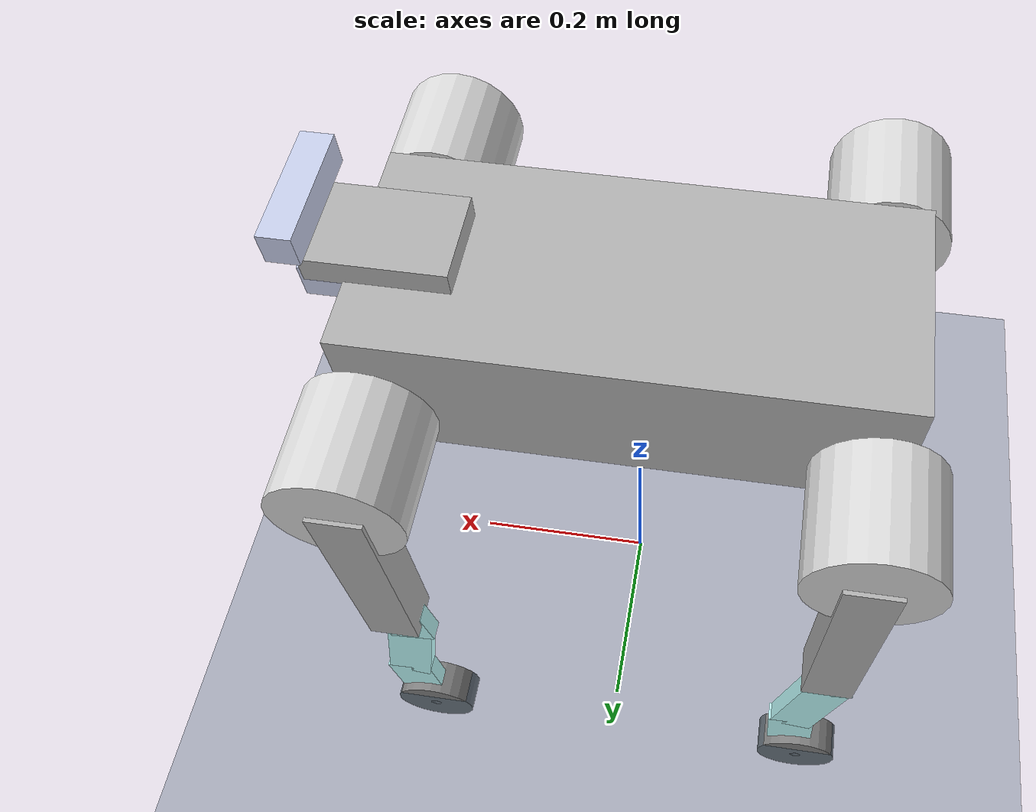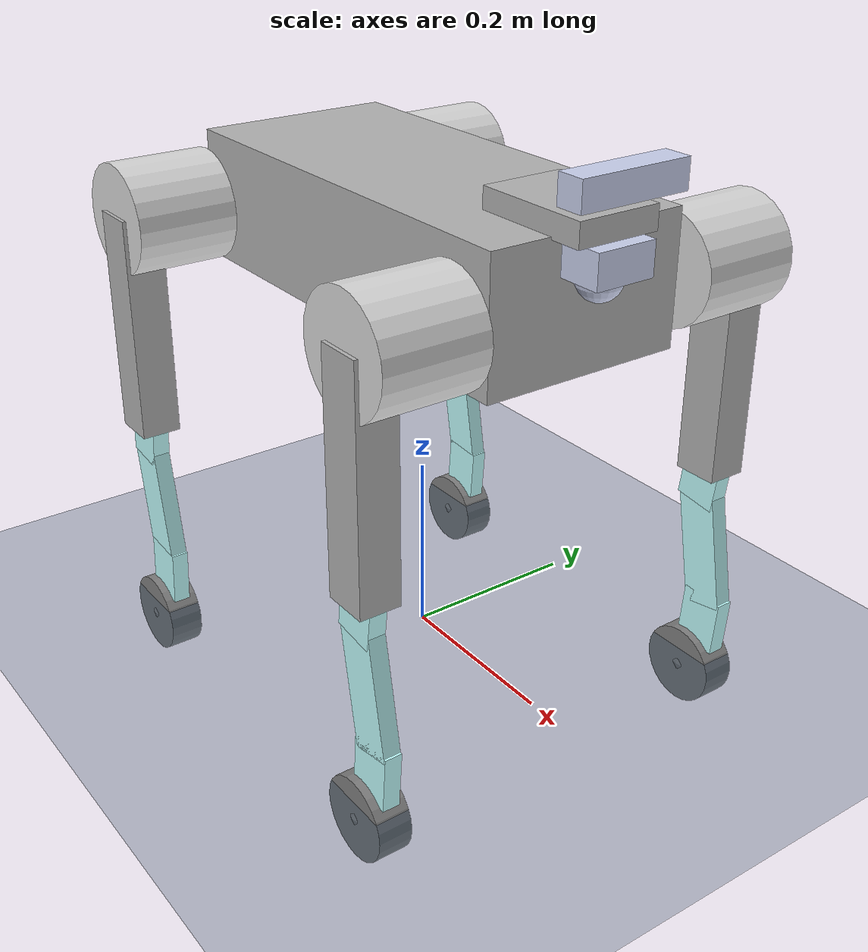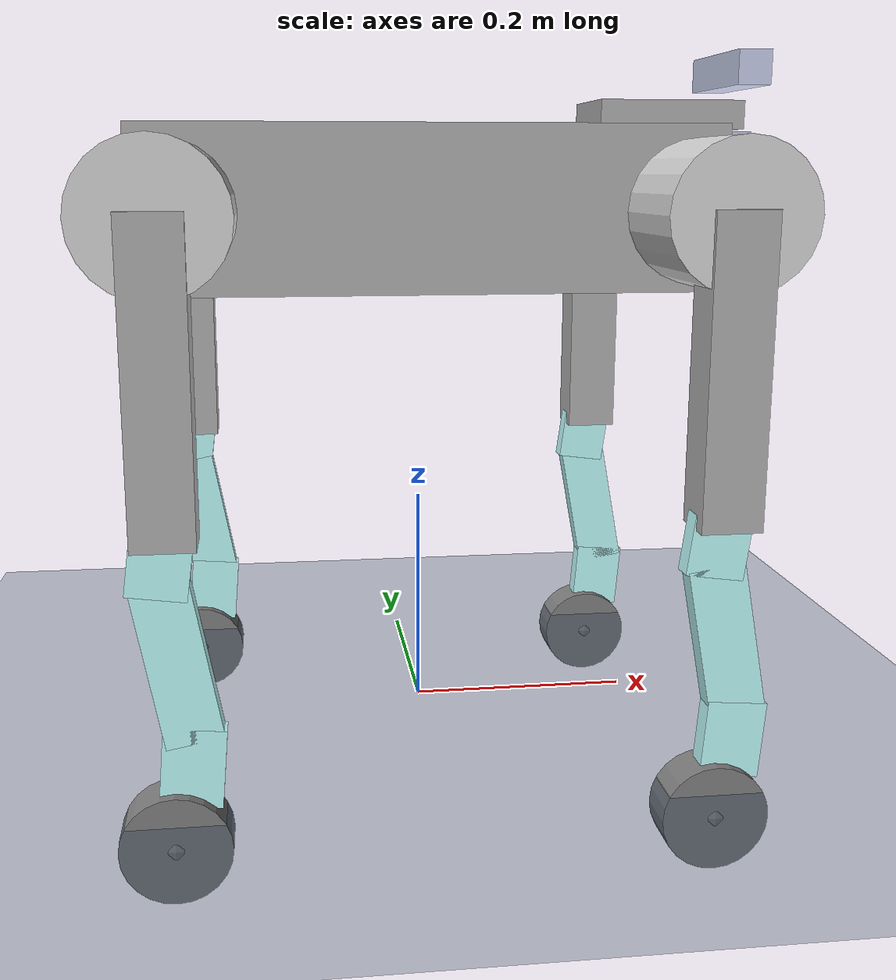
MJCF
<?xml version='1.0' encoding='utf-8'?>
<mujoco model="eva02_quadruped">
  <compiler angle="radian" meshdir="meshes" autolimits="true" />

  <asset>

    <texture name="tex_plane" type="2d" builtin="checker" rgb1="0.2 0.3 0.4" rgb2="0.1 0.2 0.3" width="300" height="300" mark="edge" markrgb="0.8 0.8 0.8" />
    <material name="mat_plane" texture="tex_plane" texrepeat="5 5" texuniform="true" reflectance="0.2" />

    <material name="mat_base" rgba="0.698 0.698 0.698 1.0" />
    <material name="mat_hip" rgba="0.85 0.85 0.85 1.0" />
    <material name="mat_thigh" rgba="0.698 0.698 0.698 1.0" />
    <material name="mat_calf" rgba="0.753 1.0 1.0 1.0" />
    <material name="mat_foot" rgba="0.502 0.502 0.502 1.0" />
  </asset>

  <default>
    <geom type="box" condim="3" friction="1.0 0.005 0.0001" />
    <joint type="hinge" limited="true" armature="0.01" damping="0.1" frictionloss="0.01" />
    <motor ctrlrange="-100 100" />
  </default>

  <worldbody>

    <light name="light" pos="0 0 10" dir="0 0 -1" diffuse="0.8 0.8 0.8" specular="0.2 0.2 0.2" />
    <geom name="floor" type="plane" pos="0 0 0" size="10 10 0.1" material="mat_plane" condim="3" />

    <body name="base" pos="0 0 0.4">
      <inertial pos="0.011858 0.000475 0.060237" mass="2.03" diaginertia="0.035961 0.031045 0.013523" />
      <freejoint name="base_joint" />

      <geom name="base_main" type="box" pos="0 0 0.07" size="0.25 0.11 0.07" material="mat_base" />
      <geom name="base_front" type="box" pos="0.22 0 0.15" size="0.065 0.045 0.0125" material="mat_base" />

      <site name="imu_site" pos="0 0 0" size="0.01" />

      <geom name="camera" type="box" pos="0.28698 0 0.1895" size="0.015 0.06 0.015" rgba="0.792 0.82 0.933 1" />

      <geom name="lidar_box" type="box" pos="0.264 0 0.1185" size="0.0325 0.0325 0.0175" rgba="0.792 0.82 0.929 1" />
      <geom name="lidar_sphere" type="sphere" pos="0.264 0 0.0985" size="0.0225" rgba="0.792 0.82 0.929 1" />

      <body name="FL_hip" pos="0.2181 0.09179 0.06815">
        <inertial pos="-0.013264 -0.000827 0.000642" mass="0.606" diaginertia="0.000779 0.000677 0.000428" />
        <joint name="FL_hip_joint" axis="1 0 0" range="-1.0472 1.0472" />
        <geom name="FL_hip_geom" type="cylinder" pos="0 0.09 0" size="0.06 0.055" quat="0.707107 0.707107 0 0" material="mat_hip" />

        <body name="FL_thigh" pos="0 0.1271 0">
          <inertial pos="-0.001468 -0.034831 -0.021338" mass="1.542" diaginertia="0.007342 0.007173 0.002278" />
          <joint name="FL_thigh_joint" axis="0 1 0" range="-1.5708 3.4907" />
          <geom name="FL_thigh_geom" type="box" pos="0 0 -0.12" size="0.025 0.022 0.125" material="mat_thigh" />

          <body name="FL_calf" pos="0 0 -0.24">
            <inertial pos="-0.046217 -0.000153 -0.054807" mass="0.307" diaginertia="0.009438 0.008918 0.000571" />
            <joint name="FL_calf_joint" axis="0 1 0" range="-2.7227 -0.83776" />
            <geom name="FL_calf_knee" type="box" pos="-0.0048 0 -0.02" size="0.024 0.0095 0.025" quat="0.997856 0 0.0654532 0" material="mat_calf" />
            <geom name="FL_calf_main" type="box" pos="0.006 0 -0.1" size="0.0235 0.0095 0.065" quat="0.995725 0 -0.0923681 0" material="mat_calf" />
            <geom name="FL_calf_ankle" type="box" pos="0.015 0 -0.185" size="0.025 0.0095 0.0325" quat="0.9992 0 0.0399893 0" material="mat_calf" />

            <geom name="FL_foot" type="cylinder" pos="0 0 -0.25" size="0.045 0.01875" quat="0.707107 0.707107 0 0" material="mat_foot" />
            <site name="FL_foot_site" pos="0 0 -0.25" size="0.02" />
          </body>
        </body>
      </body>

      <body name="FR_hip" pos="0.2181 -0.09179 0.06815">
        <inertial pos="-0.013264 0.000827 0.000642" mass="0.606" diaginertia="0.000779 0.000677 0.000428" />
        <joint name="FR_hip_joint" axis="1 0 0" range="-1.0472 1.0472" />
        <geom name="FR_hip_geom" type="cylinder" pos="0 -0.09 0" size="0.06 0.055" quat="0.707107 0.707107 0 0" material="mat_hip" />

        <body name="FR_thigh" pos="0 -0.1271 0">
          <inertial pos="-0.001468 0.034831 -0.021338" mass="1.542" diaginertia="0.007342 0.007173 0.002278" />
          <joint name="FR_thigh_joint" axis="0 1 0" range="-1.5708 3.4907" />
          <geom name="FR_thigh_geom" type="box" pos="0 0 -0.12" size="0.025 0.022 0.125" material="mat_thigh" />

          <body name="FR_calf" pos="0 0 -0.24">
            <inertial pos="-0.046217 0.000153 -0.054807" mass="0.307" diaginertia="0.009438 0.008918 0.000571" />
            <joint name="FR_calf_joint" axis="0 1 0" range="-2.7227 -0.83776" />
            <geom name="FR_calf_knee" type="box" pos="-0.0048 0 -0.02" size="0.024 0.0095 0.025" quat="0.997856 0 0.0654532 0" material="mat_calf" />
            <geom name="FR_calf_main" type="box" pos="0.006 0 -0.1" size="0.0235 0.0095 0.065" quat="0.995725 0 -0.0923681 0" material="mat_calf" />
            <geom name="FR_calf_ankle" type="box" pos="0.015 0 -0.185" size="0.025 0.0095 0.0325" quat="0.9992 0 0.0399893 0" material="mat_calf" />

            <geom name="FR_foot" type="cylinder" pos="0 0 -0.25" size="0.045 0.01875" quat="0.707107 0.707107 0 0" material="mat_foot" />
            <site name="FR_foot_site" pos="0 0 -0.25" size="0.02" />
          </body>
        </body>
      </body>

      <body name="RL_hip" pos="-0.2206 0.09179 0.06815">
        <inertial pos="0.011265 -0.004382 -4.2e-05" mass="0.815" diaginertia="0.001006 0.000865 0.000501" />
        <joint name="RL_hip_joint" axis="1 0 0" range="-1.0472 1.0472" />
        <geom name="RL_hip_geom" type="cylinder" pos="0 0.09 0" size="0.06 0.055" quat="0.707107 0.707107 0 0" material="mat_hip" />

        <body name="RL_thigh" pos="0 0.1271 0">
          <inertial pos="-0.001573 -0.032493 -0.021284" mass="1.536" diaginertia="0.007201 0.007125 0.002167" />
          <joint name="RL_thigh_joint" axis="0 1 0" range="-1.5708 3.4907" />
          <geom name="RL_thigh_geom" type="box" pos="0 0 -0.12" size="0.025 0.022 0.125" material="mat_thigh" />

          <body name="RL_calf" pos="0 0 -0.24">
            <inertial pos="-0.046217 -0.000153 -0.054807" mass="0.307" diaginertia="0.009438 0.008834 0.000656" />
            <joint name="RL_calf_joint" axis="0 1 0" range="-2.7227 -0.83776" />
            <geom name="RL_calf_knee" type="box" pos="-0.0048 0 -0.02" size="0.024 0.0095 0.025" quat="0.997856 0 0.0654532 0" material="mat_calf" />
            <geom name="RL_calf_main" type="box" pos="0.006 0 -0.1" size="0.0235 0.0095 0.065" quat="0.995725 0 -0.0923681 0" material="mat_calf" />
            <geom name="RL_calf_ankle" type="box" pos="0.015 0 -0.185" size="0.025 0.0095 0.0325" quat="0.9992 0 0.0399893 0" material="mat_calf" />

            <geom name="RL_foot" type="cylinder" pos="0 0 -0.25" size="0.045 0.01875" quat="0.707107 0.707107 0 0" material="mat_foot" />
            <site name="RL_foot_site" pos="0 0 -0.25" size="0.02" />
          </body>
        </body>
      </body>

      <body name="RR_hip" pos="-0.2206 -0.09179 0.06815">
        <inertial pos="0.011265 0.004382 -4.2e-05" mass="0.815" diaginertia="0.001006 0.000865 0.000501" />
        <joint name="RR_hip_joint" axis="1 0 0" range="-1.0472 1.0472" />
        <geom name="RR_hip_geom" type="cylinder" pos="0 -0.09 0" size="0.06 0.055" quat="0.707107 0.707107 0 0" material="mat_hip" />

        <body name="RR_thigh" pos="0 -0.1271 0">
          <inertial pos="-0.001573 0.032493 -0.021284" mass="1.536" diaginertia="0.007201 0.007125 0.002167" />
          <joint name="RR_thigh_joint" axis="0 1 0" range="-1.5708 3.4907" />
          <geom name="RR_thigh_geom" type="box" pos="0 0 -0.12" size="0.025 0.022 0.125" material="mat_thigh" />

          <body name="RR_calf" pos="0 0 -0.24">
            <inertial pos="-0.046217 0.000153 -0.054807" mass="0.307" diaginertia="0.009438 0.008834 0.000656" />
            <joint name="RR_calf_joint" axis="0 1 0" range="-2.7227 -0.83776" />
            <geom name="RR_calf_knee" type="box" pos="-0.0048 0 -0.02" size="0.024 0.0095 0.025" quat="0.997856 0 0.0654532 0" material="mat_calf" />
            <geom name="RR_calf_main" type="box" pos="0.006 0 -0.1" size="0.0235 0.0095 0.065" quat="0.995725 0 -0.0923681 0" material="mat_calf" />
            <geom name="RR_calf_ankle" type="box" pos="0.015 0 -0.185" size="0.025 0.0095 0.0325" quat="0.9992 0 0.0399893 0" material="mat_calf" />

            <geom name="RR_foot" type="cylinder" pos="0 0 -0.25" size="0.045 0.01875" quat="0.707107 0.707107 0 0" material="mat_foot" />
            <site name="RR_foot_site" pos="0 0 -0.25" size="0.02" />
          </body>
        </body>
      </body>

    </body>
  </worldbody>

  <actuator>

    <position name="FL_hip_motor" joint="FL_hip_joint" kp="100.0" kv="5.0" ctrlrange="-1.0472 1.0472" />
    <position name="FL_thigh_motor" joint="FL_thigh_joint" kp="100.0" kv="5.0" ctrlrange="-1.5708 3.4907" />
    <position name="FL_calf_motor" joint="FL_calf_joint" kp="100.0" kv="5.0" ctrlrange="-2.7227 -0.83776" />

    <position name="FR_hip_motor" joint="FR_hip_joint" kp="100.0" kv="5.0" ctrlrange="-1.0472 1.0472" />
    <position name="FR_thigh_motor" joint="FR_thigh_joint" kp="100.0" kv="5.0" ctrlrange="-1.5708 3.4907" />
    <position name="FR_calf_motor" joint="FR_calf_joint" kp="100.0" kv="5.0" ctrlrange="-2.7227 -0.83776" />

    <position name="RL_hip_motor" joint="RL_hip_joint" kp="100.0" kv="5.0" ctrlrange="-1.0472 1.0472" />
    <position name="RL_thigh_motor" joint="RL_thigh_joint" kp="100.0" kv="5.0" ctrlrange="-1.5708 3.4907" />
    <position name="RL_calf_motor" joint="RL_calf_joint" kp="100.0" kv="5.0" ctrlrange="-2.7227 -0.83776" />

    <position name="RR_hip_motor" joint="RR_hip_joint" kp="100.0" kv="5.0" ctrlrange="-1.0472 1.0472" />
    <position name="RR_thigh_motor" joint="RR_thigh_joint" kp="100.0" kv="5.0" ctrlrange="-1.5708 3.4907" />
    <position name="RR_calf_motor" joint="RR_calf_joint" kp="100.0" kv="5.0" ctrlrange="-2.7227 -0.83776" />
  </actuator>

  <sensor>

    <accelerometer name="base_accel" site="imu_site" />
    <gyro name="base_gyro" site="imu_site" />
    <framequat name="base_quat" objtype="site" objname="imu_site" />

    <touch name="FL_foot_contact" site="FL_foot_site" />
    <touch name="FR_foot_contact" site="FR_foot_site" />
    <touch name="RL_foot_contact" site="RL_foot_site" />
    <touch name="RR_foot_contact" site="RR_foot_site" />
  </sensor>

</mujoco>
